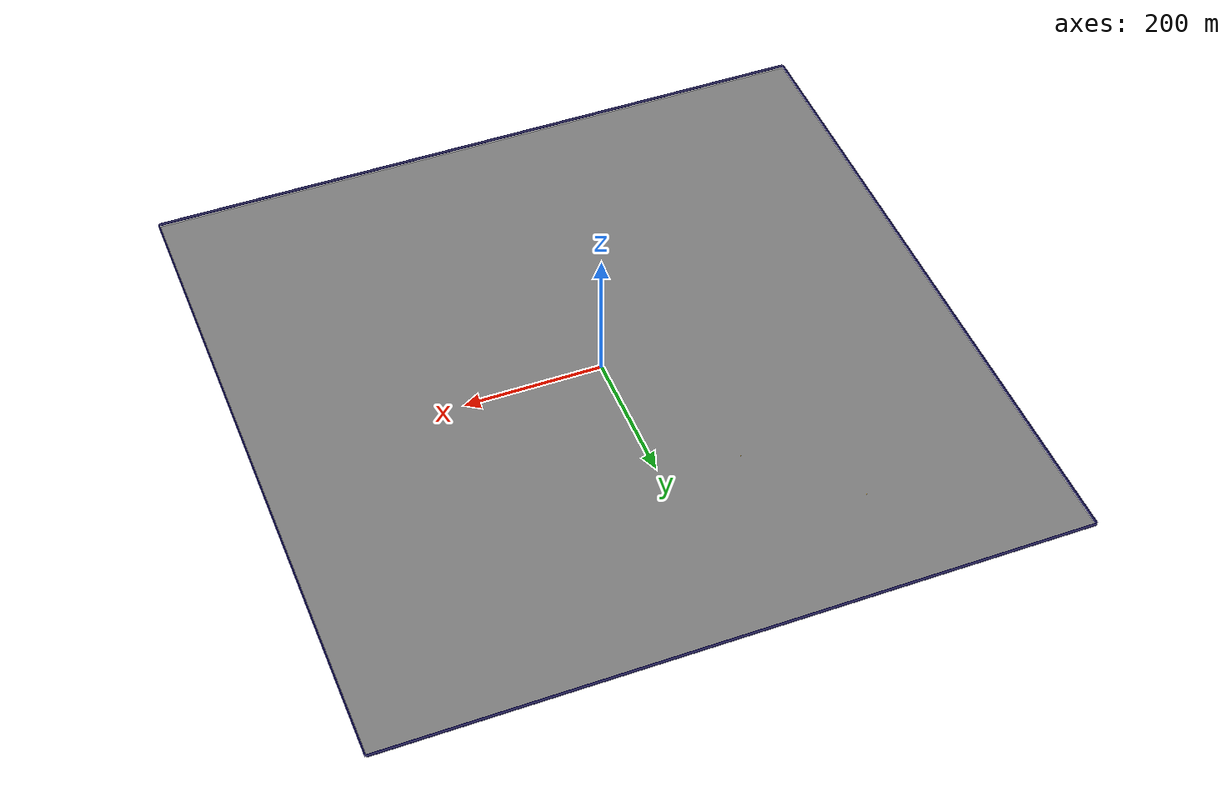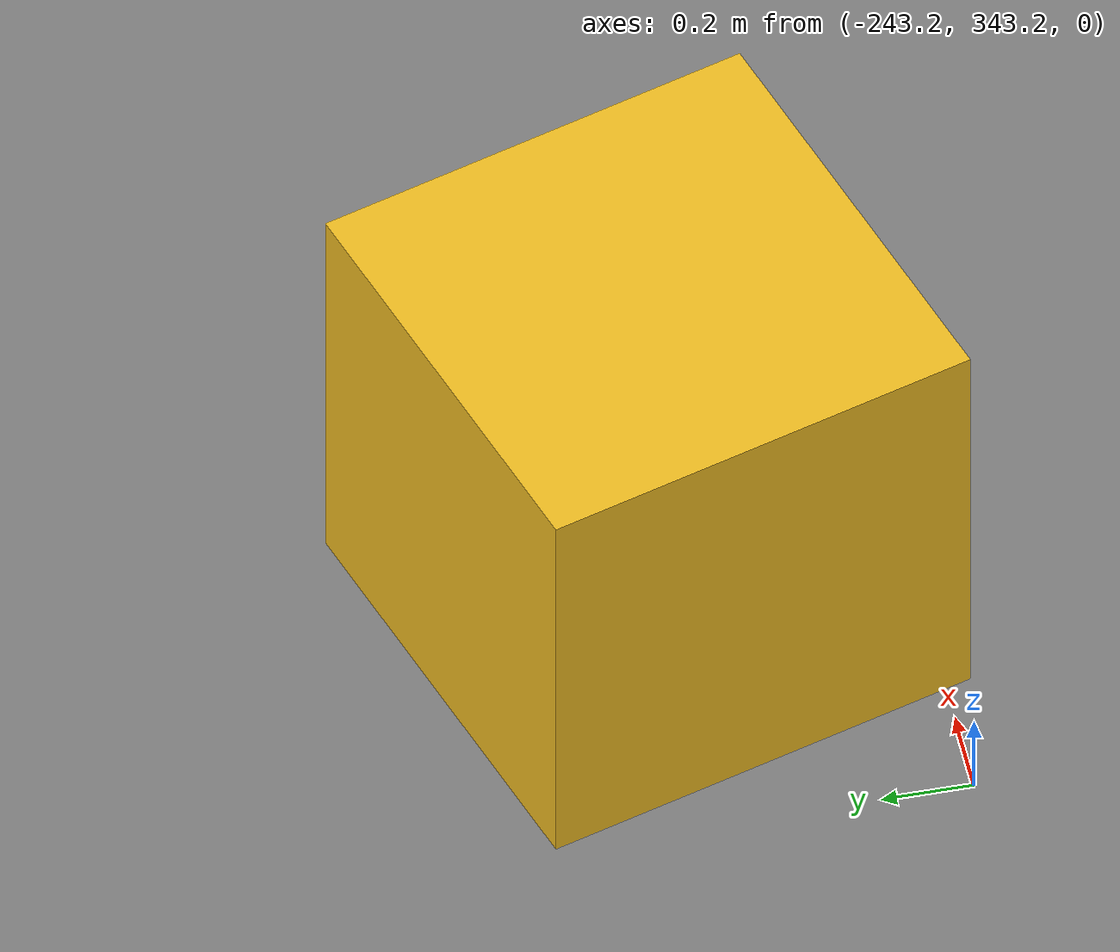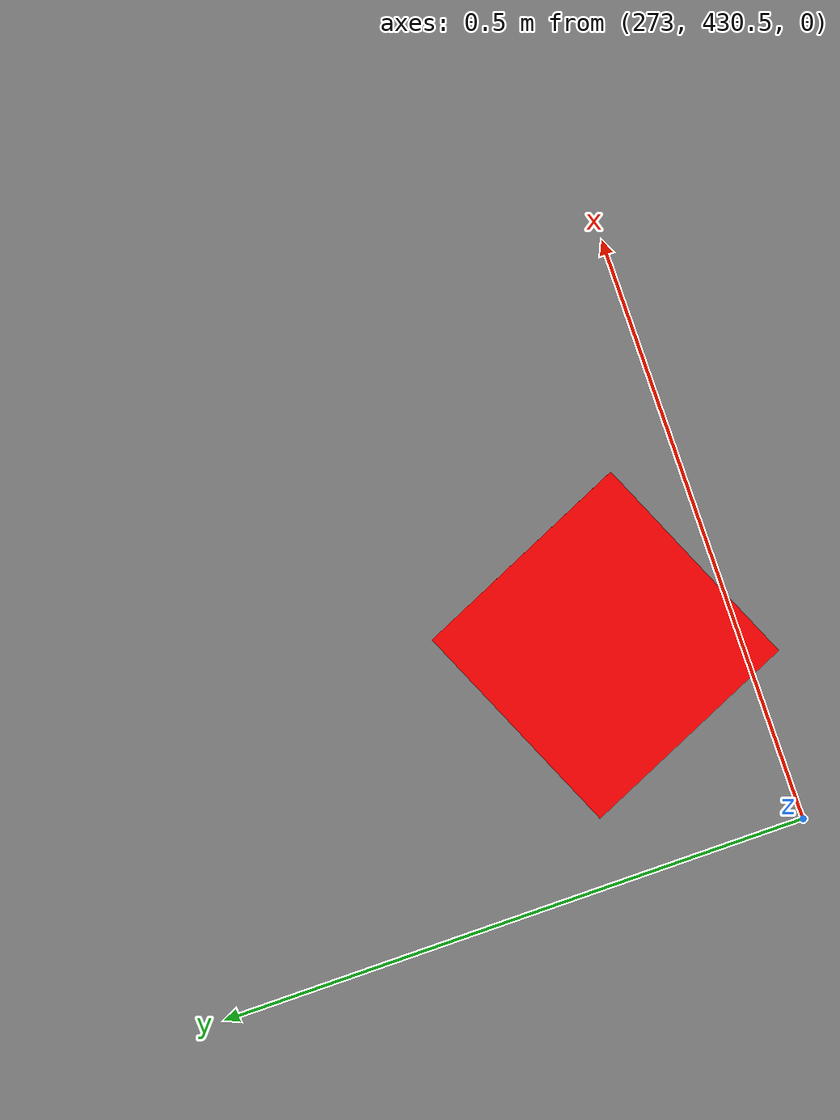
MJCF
<mujoco model="unnamed_model">
  <default>
    <default class="/" />
    <default class="border/" />
    <default class="border_1/" />
    <default class="border_2/" />
    <default class="border_3/" />
    <default class="agentplaceholder/" />
    <default class="placeholder_box/" />
    <default class="tree0/" />
    <default class="tree1/" />
    <default class="stone/" />
    <default class="stone_1/" />
  </default>
  <worldbody>
    <body name="border/">
      <body name="border/border" pos="0 501 2">
        <geom name="border/border_geom" class="border/" type="box" size="500 1 2" rgba="0.035000000000000003 0.016 0.28999999999999998 1" />
      </body>
    </body>
    <body name="border_1/">
      <body name="border_1/border" pos="0 -501 2">
        <geom name="border_1/border_geom" class="border_1/" type="box" size="500 1 2" rgba="0.035000000000000003 0.016 0.28999999999999998 1" />
      </body>
    </body>
    <body name="border_2/">
      <body name="border_2/border" pos="501 0 2">
        <geom name="border_2/border_geom" class="border_2/" type="box" size="1 500 2" rgba="0.035000000000000003 0.016 0.28999999999999998 1" />
      </body>
    </body>
    <body name="border_3/">
      <body name="border_3/border" pos="-501 0 2">
        <geom name="border_3/border_geom" class="border_3/" type="box" size="1 500 2" rgba="0.035000000000000003 0.016 0.28999999999999998 1" />
      </body>
    </body>
    <body euler="0 0 -62.977356366726994" name="agentplaceholder/">
      <joint name="agentplaceholder/boxagent_freeJoint/" class="/" type="free" />
      <body name="agentplaceholder/agentplaceholder" pos="-250 0 3" euler="0 0 0">
        <geom name="agentplaceholder/boxagent_geom" class="agentplaceholder/" type="box" size="0.5 0.5 0.5" rgba="0.94899999999999995 0.74509999999999998 0.1333 1" euler="0 0 0" />
      </body>
    </body>
    <body name="placeholder_box/">
      <body name="placeholder_box/placeholder_box" pos="-242.57249999999999 343.77390000000003 0.5" euler="0 0 17.53722430291441">
        <geom name="placeholder_box/box_geom" class="placeholder_box/" type="box" size="0.5 0.5 0.5" rgba="0.94899999999999995 0.74509999999999998 0.1333 1" euler="0 0 0" />
      </body>
    </body>
    <body name="tree0/">
      <body name="tree0/tree0" pos="155.31659999999999 -296.32260000000002 0.10000000000000001" euler="0 0 -171.55187827079681">
        <geom name="tree0/tree_geom" class="tree0/" type="box" size="0.10000000000000001 0.10000000000000001 2" rgba="1 0 0 1" />
      </body>
    </body>
    <body name="tree1/">
      <body name="tree1/tree1" pos="273.18725000000001 430.60590000000002 0.10000000000000001" euler="0 0 24.067781986090864">
        <geom name="tree1/tree_geom" class="tree1/" type="box" size="0.10000000000000001 0.10000000000000001 2" rgba="1 0 0 1" />
      </body>
    </body>
    <body name="stone/">
      <body name="stone/stone" pos="153.74375000000001 -350.5779 0.10000000000000001" euler="0 0 158.44364053118483">
        <geom name="stone/stone_geom" class="stone/" type="box" size="0.10000000000000001 0.10000000000000001 2" rgba="1 0 0 1" />
      </body>
    </body>
    <body name="stone_1/">
      <body name="stone_1/stone" pos="232.02109999999999 -467.31569999999999 0.10000000000000001" euler="0 0 122.47888537924933">
        <geom name="stone_1/stone_geom" class="stone_1/" type="box" size="0.10000000000000001 0.10000000000000001 2" rgba="1 0 0 1" />
      </body>
    </body>
    <geom name="base_plane" class="/" type="plane" size="500 500 0.10000000000000001" />
  </worldbody>
</mujoco>
